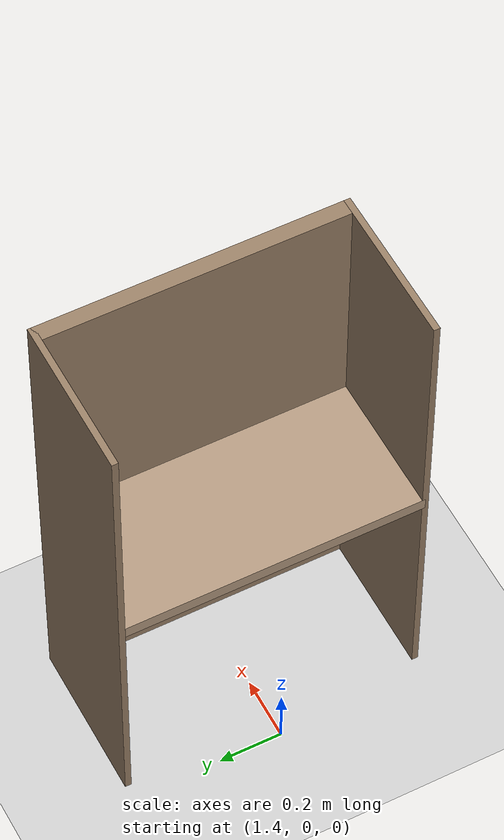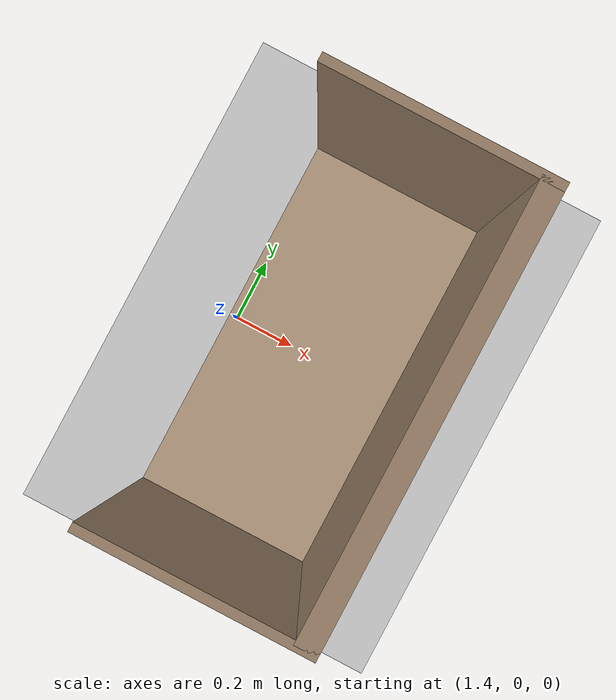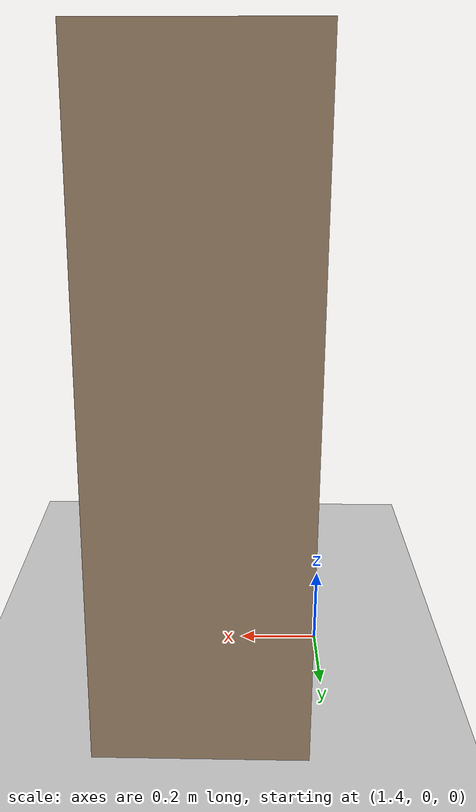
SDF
<?xml version="1.0" ?>
<sdf version="1.9">
  <world name="store_aisle">

    <physics name="1ms" type="dart">
      <max_step_size>0.001</max_step_size>
      <real_time_factor>1.0</real_time_factor>
    </physics>

    <plugin filename="gz-sim-physics-system"
            name="gz::sim::systems::Physics"/>
    <plugin filename="gz-sim-user-commands-system"
            name="gz::sim::systems::UserCommands"/>
    <plugin filename="gz-sim-scene-broadcaster-system"
            name="gz::sim::systems::SceneBroadcaster"/>
    <plugin filename="gz-sim-contact-system"
            name="gz::sim::systems::Contact"/>
    <!-- Renders camera/lidar. Harmless if it can't init a GPU in headless
         CPU mode; the known-pose mission does not depend on rendered data. -->
    <plugin filename="gz-sim-sensors-system"
            name="gz::sim::systems::Sensors">
      <render_engine>ogre2</render_engine>
    </plugin>

    <scene>
      <ambient>0.6 0.6 0.6 1</ambient>
      <background>0.8 0.85 0.9 1</background>
    </scene>

    <light type="directional" name="sun">
      <cast_shadows>true</cast_shadows>
      <pose>0 0 10 0 0 0</pose>
      <diffuse>0.9 0.9 0.9 1</diffuse>
      <specular>0.2 0.2 0.2 1</specular>
      <direction>-0.4 0.2 -1</direction>
    </light>

    <!-- Floor -->
    <model name="floor">
      <static>true</static>
      <link name="link">
        <collision name="c">
          <geometry><plane><normal>0 0 1</normal><size>20 20</size></plane></geometry>
          <surface><friction><ode><mu>1.0</mu><mu2>1.0</mu2></ode></friction></surface>
        </collision>
        <visual name="v">
          <geometry><plane><normal>0 0 1</normal><size>20 20</size></plane></geometry>
          <material><ambient>0.8 0.8 0.8 1</ambient><diffuse>0.8 0.8 0.8 1</diffuse></material>
        </visual>
      </link>
    </model>

    <model name="grocery_shelf">
      <static>true</static>
      <pose>1.70 0 0 0 0 0</pose>
      <link name="frame">
        <!-- back panel -->
        <collision name="back_c">
          <pose>0.225 0 0.8 0 0 0</pose>
          <geometry><box><size>0.05 0.95 1.6</size></box></geometry>
        </collision>
        <visual name="back_v">
          <pose>0.225 0 0.8 0 0 0</pose>
          <geometry><box><size>0.05 0.95 1.6</size></box></geometry>
          <material><ambient>0.5 0.4 0.3 1</ambient><diffuse>0.6 0.5 0.4 1</diffuse></material>
        </visual>
        <!-- the shelf board the robot stocks (top surface z = 0.82) -->
        <collision name="board_c">
          <pose>0 0 0.80 0 0 0</pose>
          <geometry><box><size>0.50 0.95 0.04</size></box></geometry>
          <surface><friction><ode><mu>1.0</mu><mu2>1.0</mu2></ode></friction></surface>
        </collision>
        <visual name="board_v">
          <pose>0 0 0.80 0 0 0</pose>
          <geometry><box><size>0.50 0.95 0.04</size></box></geometry>
          <material><ambient>0.6 0.5 0.4 1</ambient><diffuse>0.7 0.6 0.5 1</diffuse></material>
        </visual>
        <!-- side panels -->
        <collision name="left_c">
          <pose>0 0.475 0.8 0 0 0</pose>
          <geometry><box><size>0.50 0.02 1.6</size></box></geometry>
        </collision>
        <visual name="left_v">
          <pose>0 0.475 0.8 0 0 0</pose>
          <geometry><box><size>0.50 0.02 1.6</size></box></geometry>
          <material><ambient>0.5 0.4 0.3 1</ambient><diffuse>0.6 0.5 0.4 1</diffuse></material>
        </visual>
        <collision name="right_c">
          <pose>0 -0.475 0.8 0 0 0</pose>
          <geometry><box><size>0.50 0.02 1.6</size></box></geometry>
        </collision>
        <visual name="right_v">
          <pose>0 -0.475 0.8 0 0 0</pose>
          <geometry><box><size>0.50 0.02 1.6</size></box></geometry>
          <material><ambient>0.5 0.4 0.3 1</ambient><diffuse>0.6 0.5 0.4 1</diffuse></material>
        </visual>
      </link>
    </model>

  </world>
</sdf>
